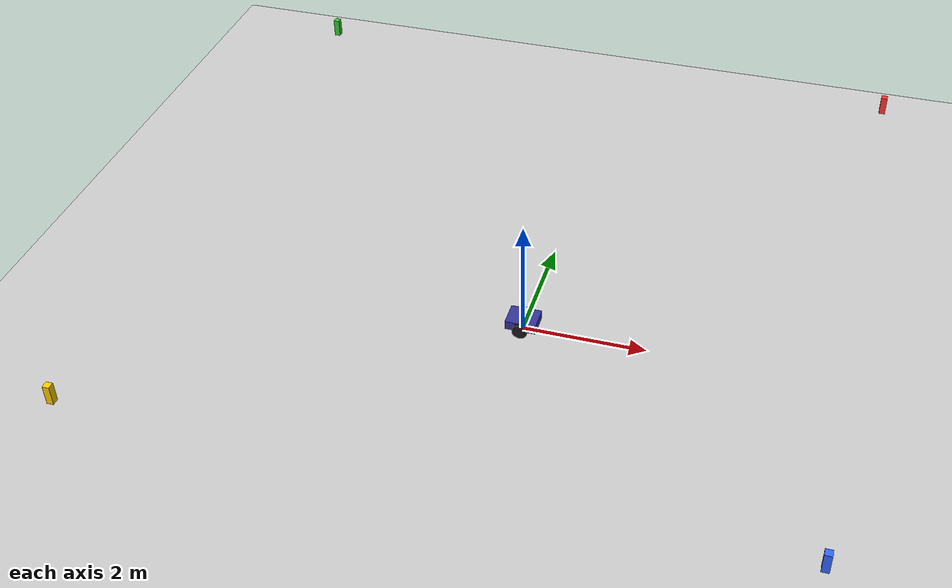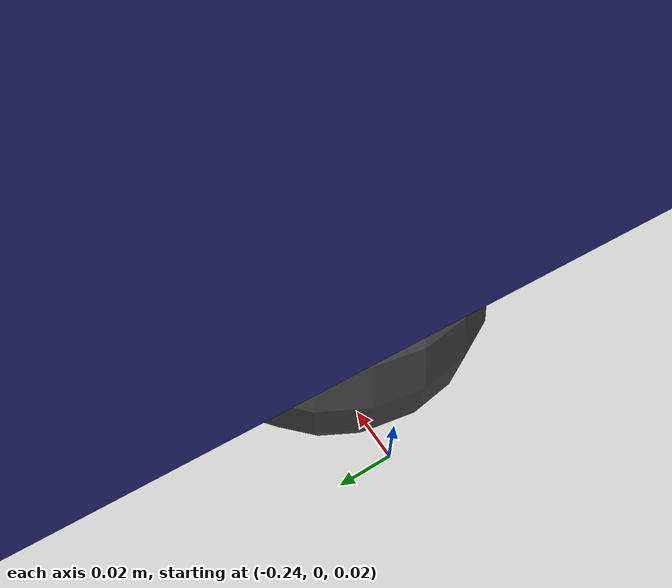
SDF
<?xml version="1.0"?>
<sdf version="1.8">
  <world name="uwb_demo_world">

    <!-- Physics -->
    <physics name="1ms" type="ode">
      <max_step_size>0.001</max_step_size>
      <real_time_factor>1.0</real_time_factor>
    </physics>

    <!-- Scene -->
    <scene>
      <ambient>0.4 0.4 0.4 1</ambient>
      <background>0.7 0.8 0.9 1</background>
      <shadows>true</shadows>
    </scene>

    <!-- Plugins -->
    <plugin filename="gz-sim-physics-system" name="gz::sim::systems::Physics"/>
    <plugin filename="ignition-gazebo-user-commands-system" name="gz::sim::systems::UserCommands"/>
    <plugin filename="ignition-gazebo-scene-broadcaster-system" name="gz::sim::systems::SceneBroadcaster"/>

    <!-- Sun -->
    <light type="directional" name="sun">
      <cast_shadows>true</cast_shadows>
      <pose>0 0 10 0 0 0</pose>
      <diffuse>0.8 0.8 0.8 1</diffuse>
      <specular>0.2 0.2 0.2 1</specular>
      <direction>-0.5 0.1 -0.9</direction>
    </light>

    <!-- Ground Plane -->
    <model name="ground_plane">
      <static>true</static>
      <link name="link">
        <collision name="collision">
          <geometry>
            <plane><normal>0 0 1</normal><size>100 100</size></plane>
          </geometry>
        </collision>
        <visual name="visual">
          <geometry>
            <plane><normal>0 0 1</normal><size>100 100</size></plane>
          </geometry>
          <material>
            <ambient>0.8 0.8 0.8 1</ambient>
            <diffuse>0.8 0.8 0.8 1</diffuse>
          </material>
        </visual>
      </link>
    </model>

    <!-- UWB Anchor 0: (5, 5, 2) — Red -->
    <model name="uwb_anchor_0">
      <static>true</static>
      <pose>5 5 2 0 0 0</pose>
      <link name="link">
        <visual name="visual">
          <geometry><box><size>0.1 0.1 0.3</size></box></geometry>
          <material>
            <ambient>1 0.2 0.2 1</ambient>
            <diffuse>1 0.2 0.2 1</diffuse>
          </material>
        </visual>
      </link>
      <!-- UWB Plugin: measures distance to tag_robot -->
      <plugin filename="libUWBPlugin.so" name="ros2_uwb_research_sim::UWBPlugin">
        <target_entity>tag_robot</target_entity>
        <update_rate>20.0</update_rate>
        <gaussian_std>0.02</gaussian_std>
        <nlos_lambda>1.5</nlos_lambda>
        <nlos_prob>0.1</nlos_prob>
        <multipath_alpha>0.8</multipath_alpha>
        <multipath_std>0.01</multipath_std>
        <clock_drift_std>0.0001</clock_drift_std>
        <topic>/uwb/range_0</topic>
        <frame_id>uwb_anchor_0</frame_id>
      </plugin>
    </model>

    <!-- UWB Anchor 1: (-5, 5, 2) — Green -->
    <model name="uwb_anchor_1">
      <static>true</static>
      <pose>-5 5 2 0 0 0</pose>
      <link name="link">
        <visual name="visual">
          <geometry><box><size>0.1 0.1 0.3</size></box></geometry>
          <material>
            <ambient>0.2 0.8 0.2 1</ambient>
            <diffuse>0.2 0.8 0.2 1</diffuse>
          </material>
        </visual>
      </link>
      <plugin filename="libUWBPlugin.so" name="ros2_uwb_research_sim::UWBPlugin">
        <target_entity>tag_robot</target_entity>
        <update_rate>20.0</update_rate>
        <gaussian_std>0.02</gaussian_std>
        <nlos_lambda>1.5</nlos_lambda>
        <nlos_prob>0.1</nlos_prob>
        <multipath_alpha>0.8</multipath_alpha>
        <multipath_std>0.01</multipath_std>
        <clock_drift_std>0.0001</clock_drift_std>
        <topic>/uwb/range_1</topic>
        <frame_id>uwb_anchor_1</frame_id>
      </plugin>
    </model>

    <!-- UWB Anchor 2: (5, -5, 2) — Blue -->
    <model name="uwb_anchor_2">
      <static>true</static>
      <pose>5 -5 2 0 0 0</pose>
      <link name="link">
        <visual name="visual">
          <geometry><box><size>0.1 0.1 0.3</size></box></geometry>
          <material>
            <ambient>0.2 0.4 1 1</ambient>
            <diffuse>0.2 0.4 1 1</diffuse>
          </material>
        </visual>
      </link>
      <plugin filename="libUWBPlugin.so" name="ros2_uwb_research_sim::UWBPlugin">
        <target_entity>tag_robot</target_entity>
        <update_rate>20.0</update_rate>
        <gaussian_std>0.02</gaussian_std>
        <nlos_lambda>1.5</nlos_lambda>
        <nlos_prob>0.1</nlos_prob>
        <multipath_alpha>0.8</multipath_alpha>
        <multipath_std>0.01</multipath_std>
        <clock_drift_std>0.0001</clock_drift_std>
        <topic>/uwb/range_2</topic>
        <frame_id>uwb_anchor_2</frame_id>
      </plugin>
    </model>

    <!-- UWB Anchor 3: (-5, -5, 2) — Yellow -->
    <model name="uwb_anchor_3">
      <static>true</static>
      <pose>-5 -5 2 0 0 0</pose>
      <link name="link">
        <visual name="visual">
          <geometry><box><size>0.1 0.1 0.3</size></box></geometry>
          <material>
            <ambient>1 0.8 0 1</ambient>
            <diffuse>1 0.8 0 1</diffuse>
          </material>
        </visual>
      </link>
      <plugin filename="libUWBPlugin.so" name="ros2_uwb_research_sim::UWBPlugin">
        <target_entity>tag_robot</target_entity>
        <update_rate>20.0</update_rate>
        <gaussian_std>0.02</gaussian_std>
        <nlos_lambda>1.5</nlos_lambda>
        <nlos_prob>0.1</nlos_prob>
        <multipath_alpha>0.8</multipath_alpha>
        <multipath_std>0.01</multipath_std>
        <clock_drift_std>0.0001</clock_drift_std>
        <topic>/uwb/range_3</topic>
        <frame_id>uwb_anchor_3</frame_id>
      </plugin>
    </model>

    <!-- Mobile Robot (UWB Tag) -->
    <model name="tag_robot">
      <pose>0 0 0.175 0 0 0</pose>

      <!-- Chassis -->
      <link name="base_link">
        <inertial>
          <mass>5.0</mass>
          <inertia>
            <ixx>0.1</ixx><iyy>0.1</iyy><izz>0.15</izz>
          </inertia>
        </inertial>
        <visual name="visual">
          <geometry><box><size>0.5 0.4 0.15</size></box></geometry>
          <material>
            <ambient>0.2 0.2 0.6 1</ambient>
            <diffuse>0.2 0.2 0.6 1</diffuse>
          </material>
        </visual>
        <collision name="collision">
          <geometry><box><size>0.5 0.4 0.15</size></box></geometry>
        </collision>
      </link>

      <!-- Left Wheel -->
      <link name="left_wheel">
        <pose>0 0.225 -0.05 -1.5708 0 0</pose>
        <inertial>
          <mass>0.5</mass>
          <inertia>
            <ixx>0.001</ixx><iyy>0.001</iyy><izz>0.002</izz>
          </inertia>
        </inertial>
        <visual name="visual">
          <geometry><cylinder><radius>0.125</radius><length>0.05</length></cylinder></geometry>
          <material>
            <ambient>0.1 0.1 0.1 1</ambient>
            <diffuse>0.1 0.1 0.1 1</diffuse>
          </material>
        </visual>
        <collision name="collision">
          <geometry><cylinder><radius>0.125</radius><length>0.05</length></cylinder></geometry>
          <surface>
            <friction><ode><mu>1.0</mu><mu2>1.0</mu2></ode></friction>
          </surface>
        </collision>
      </link>

      <!-- Right Wheel -->
      <link name="right_wheel">
        <pose>0 -0.225 -0.05 -1.5708 0 0</pose>
        <inertial>
          <mass>0.5</mass>
          <inertia>
            <ixx>0.001</ixx><iyy>0.001</iyy><izz>0.002</izz>
          </inertia>
        </inertial>
        <visual name="visual">
          <geometry><cylinder><radius>0.125</radius><length>0.05</length></cylinder></geometry>
          <material>
            <ambient>0.1 0.1 0.1 1</ambient>
            <diffuse>0.1 0.1 0.1 1</diffuse>
          </material>
        </visual>
        <collision name="collision">
          <geometry><cylinder><radius>0.125</radius><length>0.05</length></cylinder></geometry>
          <surface>
            <friction><ode><mu>1.0</mu><mu2>1.0</mu2></ode></friction>
          </surface>
        </collision>
      </link>

      <!-- Caster -->
      <link name="caster">
        <pose>-0.2 0 -0.1 0 0 0</pose>
        <inertial>
          <mass>0.2</mass>
          <inertia>
            <ixx>0.0001</ixx><iyy>0.0001</iyy><izz>0.0001</izz>
          </inertia>
        </inertial>
        <visual name="visual">
          <geometry><sphere><radius>0.05</radius></sphere></geometry>
          <material>
            <ambient>0.3 0.3 0.3 1</ambient>
            <diffuse>0.3 0.3 0.3 1</diffuse>
          </material>
        </visual>
        <collision name="collision">
          <geometry><sphere><radius>0.05</radius></sphere></geometry>
          <surface>
            <friction><ode><mu>0.0</mu><mu2>0.0</mu2></ode></friction>
          </surface>
        </collision>
      </link>

      <!-- Joints -->
      <joint name="left_wheel_joint" type="revolute">
        <parent>base_link</parent>
        <child>left_wheel</child>
        <axis><xyz>0 0 1</xyz></axis>
      </joint>
      <joint name="right_wheel_joint" type="revolute">
        <parent>base_link</parent>
        <child>right_wheel</child>
        <axis><xyz>0 0 1</xyz></axis>
      </joint>
      <joint name="caster_joint" type="ball">
        <parent>base_link</parent>
        <child>caster</child>
      </joint>

      <!-- Differential Drive -->
      <plugin filename="ignition-gazebo-diff-drive-system"
              name="ignition::gazebo::systems::DiffDrive">
        <left_joint>left_wheel_joint</left_joint>
        <right_joint>right_wheel_joint</right_joint>
        <wheel_separation>0.45</wheel_separation>
        <wheel_radius>0.125</wheel_radius>
        <max_linear_acceleration>1.0</max_linear_acceleration>
        <max_angular_acceleration>2.0</max_angular_acceleration>
        <odom_publish_frequency>20</odom_publish_frequency>
        <topic>cmd_vel</topic>
      </plugin>

      <!-- Joint State Publisher -->
      <plugin filename="ignition-gazebo-joint-state-publisher-system"
              name="ignition::gazebo::systems::JointStatePublisher">
        <joint_name>left_wheel_joint</joint_name>
        <joint_name>right_wheel_joint</joint_name>
      </plugin>

      <!-- Pose Publisher (for odometry + TF) -->
      <plugin filename="ignition-gazebo-pose-publisher-system"
              name="ignition::gazebo::systems::PosePublisher">
        <publish_link_pose>true</publish_link_pose>
        <publish_nested_model_pose>false</publish_nested_model_pose>
        <use_pose_vector_msg>true</use_pose_vector_msg>
        <publish_model_pose>false</publish_model_pose>
      </plugin>
    </model>

  </world>
</sdf>
